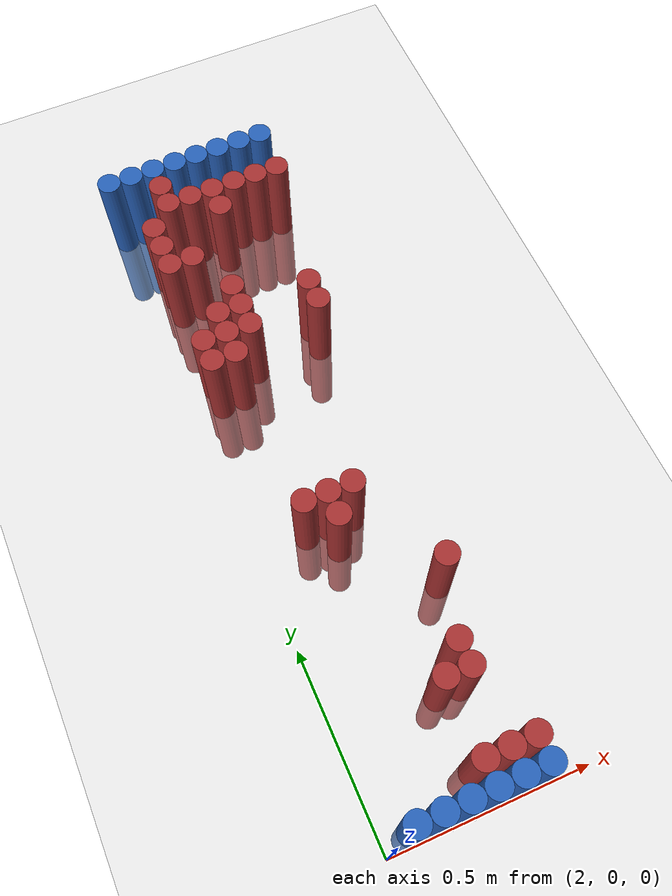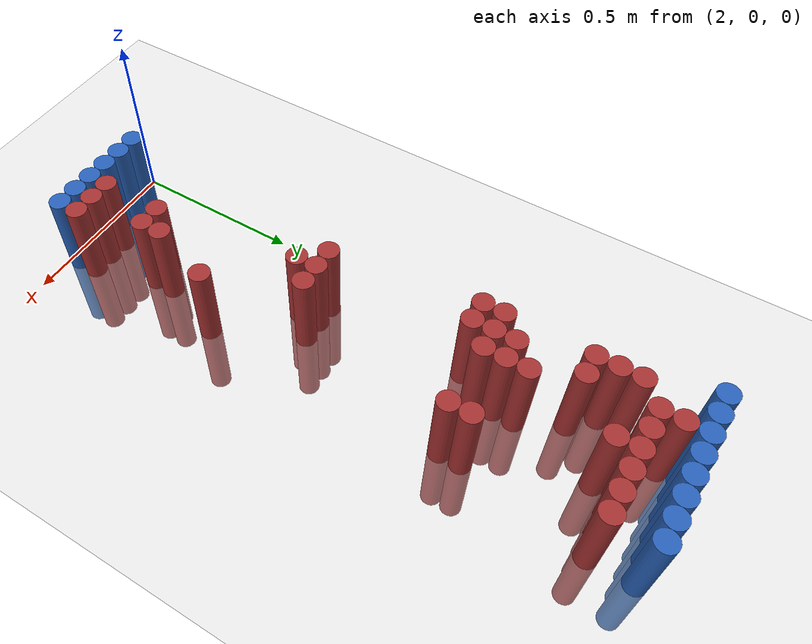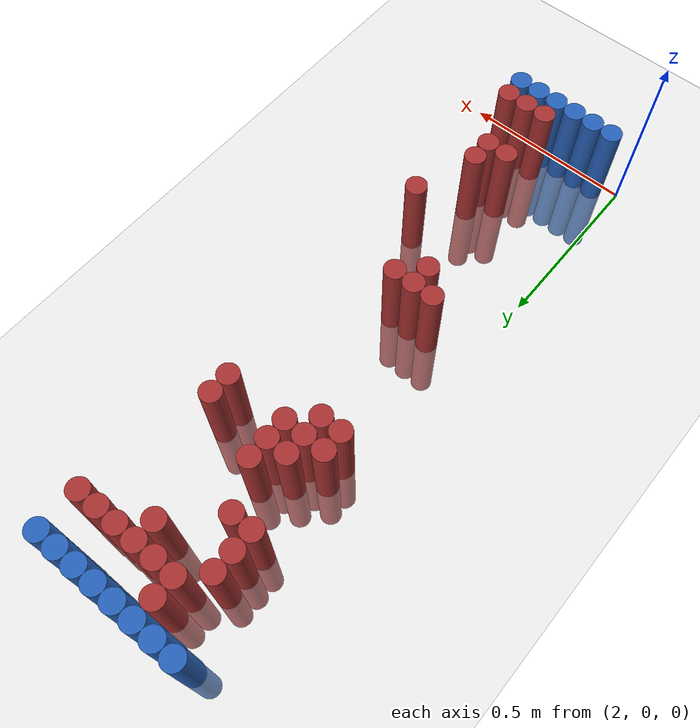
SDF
<sdf version="1.6">
 <world name="default">
  <model name="ground_plane">
   <static>1</static>
   <link name="link">
    <collision name="collision">
     <geometry><plane><normal>0 0 1</normal><size>100 100</size></plane></geometry>
     <surface><friction><ode><mu>100</mu><mu2>50</mu2></ode></friction></surface>
    </collision>
    <visual name="visual">
     <cast_shadows>0</cast_shadows>
     <geometry><plane><normal>0 0 1</normal><size>100 100</size></plane></geometry>
     <material>
      <script><uri>file://media/materials/scripts/gazebo.material</uri><name>Gazebo/Grey</name></script>
     </material>
    </visual>
   </link>
  </model>
  <model name="unit_cylinder_94">
   <static>1</static>
   <pose>2.010000 1.770000 0.000000 0.000000 0.000000 0.000000</pose>
   <link name="link">
    <inertial>
     <mass>1</mass>
     <inertia><ixx>0.145833</ixx><ixy>0</ixy><ixz>0</ixz><iyy>0.145833</iyy><iyz>0</iyz><izz>0.125</izz></inertia>
    </inertial>
    <collision name="collision">
     <geometry><cylinder><radius>0.030000</radius><length>0.5</length></cylinder></geometry>
    </collision>
    <visual name="visual">
     <geometry><cylinder><radius>0.030000</radius><length>0.5</length></cylinder></geometry>
     <material>
      <ambient>0.152000 0.379000 0.720000 1</ambient>
      <diffuse>0.152000 0.379000 0.720000 1</diffuse>
     </material>
     <material>
      <script><name>Gazebo/Grey</name><uri>file://media/materials/scripts/gazebo.material</uri></script>
     </material>
    </visual>
   </link>
  </model>
  <model name="unit_cylinder_95">
   <static>1</static>
   <pose>2.070000 1.770000 0.000000 0.000000 0.000000 0.000000</pose>
   <link name="link">
    <inertial>
     <mass>1</mass>
     <inertia><ixx>0.145833</ixx><ixy>0</ixy><ixz>0</ixz><iyy>0.145833</iyy><iyz>0</iyz><izz>0.125</izz></inertia>
    </inertial>
    <collision name="collision">
     <geometry><cylinder><radius>0.030000</radius><length>0.5</length></cylinder></geometry>
    </collision>
    <visual name="visual">
     <geometry><cylinder><radius>0.030000</radius><length>0.5</length></cylinder></geometry>
     <material>
      <ambient>0.152000 0.379000 0.720000 1</ambient>
      <diffuse>0.152000 0.379000 0.720000 1</diffuse>
     </material>
     <material>
      <script><name>Gazebo/Grey</name><uri>file://media/materials/scripts/gazebo.material</uri></script>
     </material>
    </visual>
   </link>
  </model>
  <model name="unit_cylinder_96">
   <static>1</static>
   <pose>2.130000 1.770000 0.000000 0.000000 0.000000 0.000000</pose>
   <link name="link">
    <inertial>
     <mass>1</mass>
     <inertia><ixx>0.145833</ixx><ixy>0</ixy><ixz>0</ixz><iyy>0.145833</iyy><iyz>0</iyz><izz>0.125</izz></inertia>
    </inertial>
    <collision name="collision">
     <geometry><cylinder><radius>0.030000</radius><length>0.5</length></cylinder></geometry>
    </collision>
    <visual name="visual">
     <geometry><cylinder><radius>0.030000</radius><length>0.5</length></cylinder></geometry>
     <material>
      <ambient>0.152000 0.379000 0.720000 1</ambient>
      <diffuse>0.152000 0.379000 0.720000 1</diffuse>
     </material>
     <material>
      <script><name>Gazebo/Grey</name><uri>file://media/materials/scripts/gazebo.material</uri></script>
     </material>
    </visual>
   </link>
  </model>
  <model name="unit_cylinder_97">
   <static>1</static>
   <pose>2.190000 1.770000 0.000000 0.000000 0.000000 0.000000</pose>
   <link name="link">
    <inertial>
     <mass>1</mass>
     <inertia><ixx>0.145833</ixx><ixy>0</ixy><ixz>0</ixz><iyy>0.145833</iyy><iyz>0</iyz><izz>0.125</izz></inertia>
    </inertial>
    <collision name="collision">
     <geometry><cylinder><radius>0.030000</radius><length>0.5</length></cylinder></geometry>
    </collision>
    <visual name="visual">
     <geometry><cylinder><radius>0.030000</radius><length>0.5</length></cylinder></geometry>
     <material>
      <ambient>0.152000 0.379000 0.720000 1</ambient>
      <diffuse>0.152000 0.379000 0.720000 1</diffuse>
     </material>
     <material>
      <script><name>Gazebo/Grey</name><uri>file://media/materials/scripts/gazebo.material</uri></script>
     </material>
    </visual>
   </link>
  </model>
  <model name="unit_cylinder_98">
   <static>1</static>
   <pose>2.250000 1.770000 0.000000 0.000000 0.000000 0.000000</pose>
   <link name="link">
    <inertial>
     <mass>1</mass>
     <inertia><ixx>0.145833</ixx><ixy>0</ixy><ixz>0</ixz><iyy>0.145833</iyy><iyz>0</iyz><izz>0.125</izz></inertia>
    </inertial>
    <collision name="collision">
     <geometry><cylinder><radius>0.030000</radius><length>0.5</length></cylinder></geometry>
    </collision>
    <visual name="visual">
     <geometry><cylinder><radius>0.030000</radius><length>0.5</length></cylinder></geometry>
     <material>
      <ambient>0.152000 0.379000 0.720000 1</ambient>
      <diffuse>0.152000 0.379000 0.720000 1</diffuse>
     </material>
     <material>
      <script><name>Gazebo/Grey</name><uri>file://media/materials/scripts/gazebo.material</uri></script>
     </material>
    </visual>
   </link>
  </model>
  <model name="unit_cylinder_99">
   <static>1</static>
   <pose>2.310000 1.770000 0.000000 0.000000 0.000000 0.000000</pose>
   <link name="link">
    <inertial>
     <mass>1</mass>
     <inertia><ixx>0.145833</ixx><ixy>0</ixy><ixz>0</ixz><iyy>0.145833</iyy><iyz>0</iyz><izz>0.125</izz></inertia>
    </inertial>
    <collision name="collision">
     <geometry><cylinder><radius>0.030000</radius><length>0.5</length></cylinder></geometry>
    </collision>
    <visual name="visual">
     <geometry><cylinder><radius>0.030000</radius><length>0.5</length></cylinder></geometry>
     <material>
      <ambient>0.152000 0.379000 0.720000 1</ambient>
      <diffuse>0.152000 0.379000 0.720000 1</diffuse>
     </material>
     <material>
      <script><name>Gazebo/Grey</name><uri>file://media/materials/scripts/gazebo.material</uri></script>
     </material>
    </visual>
   </link>
  </model>
  <model name="unit_cylinder_100">
   <static>1</static>
   <pose>2.370000 1.770000 0.000000 0.000000 0.000000 0.000000</pose>
   <link name="link">
    <inertial>
     <mass>1</mass>
     <inertia><ixx>0.145833</ixx><ixy>0</ixy><ixz>0</ixz><iyy>0.145833</iyy><iyz>0</iyz><izz>0.125</izz></inertia>
    </inertial>
    <collision name="collision">
     <geometry><cylinder><radius>0.030000</radius><length>0.5</length></cylinder></geometry>
    </collision>
    <visual name="visual">
     <geometry><cylinder><radius>0.030000</radius><length>0.5</length></cylinder></geometry>
     <material>
      <ambient>0.152000 0.379000 0.720000 1</ambient>
      <diffuse>0.152000 0.379000 0.720000 1</diffuse>
     </material>
     <material>
      <script><name>Gazebo/Grey</name><uri>file://media/materials/scripts/gazebo.material</uri></script>
     </material>
    </visual>
   </link>
  </model>
  <model name="unit_cylinder_101">
   <static>1</static>
   <pose>2.430000 1.770000 0.000000 0.000000 0.000000 0.000000</pose>
   <link name="link">
    <inertial>
     <mass>1</mass>
     <inertia><ixx>0.145833</ixx><ixy>0</ixy><ixz>0</ixz><iyy>0.145833</iyy><iyz>0</iyz><izz>0.125</izz></inertia>
    </inertial>
    <collision name="collision">
     <geometry><cylinder><radius>0.030000</radius><length>0.5</length></cylinder></geometry>
    </collision>
    <visual name="visual">
     <geometry><cylinder><radius>0.030000</radius><length>0.5</length></cylinder></geometry>
     <material>
      <ambient>0.152000 0.379000 0.720000 1</ambient>
      <diffuse>0.152000 0.379000 0.720000 1</diffuse>
     </material>
     <material>
      <script><name>Gazebo/Grey</name><uri>file://media/materials/scripts/gazebo.material</uri></script>
     </material>
    </visual>
   </link>
  </model>
  <model name="unit_cylinder_125">
   <static>1</static>
   <pose>2.130000 1.710000 0.000000 0.000000 0.000000 0.000000</pose>
   <link name="link">
    <inertial>
     <mass>1</mass>
     <inertia><ixx>0.145833</ixx><ixy>0</ixy><ixz>0</ixz><iyy>0.145833</iyy><iyz>0</iyz><izz>0.125</izz></inertia>
    </inertial>
    <collision name="collision">
     <geometry><cylinder><radius>0.030000</radius><length>0.5</length></cylinder></geometry>
    </collision>
    <visual name="visual">
     <geometry><cylinder><radius>0.030000</radius><length>0.5</length></cylinder></geometry>
     <material>
      <ambient>0.648000 0.192000 0.192000 1</ambient>
      <diffuse>0.648000 0.192000 0.192000 1</diffuse>
     </material>
     <material>
      <script><name>Gazebo/Grey</name><uri>file://media/materials/scripts/gazebo.material</uri></script>
     </material>
    </visual>
   </link>
  </model>
  <model name="unit_cylinder_142">
   <static>1</static>
   <pose>2.130000 1.650000 0.000000 0.000000 0.000000 0.000000</pose>
   <link name="link">
    <inertial>
     <mass>1</mass>
     <inertia><ixx>0.145833</ixx><ixy>0</ixy><ixz>0</ixz><iyy>0.145833</iyy><iyz>0</iyz><izz>0.125</izz></inertia>
    </inertial>
    <collision name="collision">
     <geometry><cylinder><radius>0.030000</radius><length>0.5</length></cylinder></geometry>
    </collision>
    <visual name="visual">
     <geometry><cylinder><radius>0.030000</radius><length>0.5</length></cylinder></geometry>
     <material>
      <ambient>0.648000 0.192000 0.192000 1</ambient>
      <diffuse>0.648000 0.192000 0.192000 1</diffuse>
     </material>
     <material>
      <script><name>Gazebo/Grey</name><uri>file://media/materials/scripts/gazebo.material</uri></script>
     </material>
    </visual>
   </link>
  </model>
  <model name="unit_cylinder_143">
   <static>1</static>
   <pose>2.190000 1.650000 0.000000 0.000000 0.000000 0.000000</pose>
   <link name="link">
    <inertial>
     <mass>1</mass>
     <inertia><ixx>0.145833</ixx><ixy>0</ixy><ixz>0</ixz><iyy>0.145833</iyy><iyz>0</iyz><izz>0.125</izz></inertia>
    </inertial>
    <collision name="collision">
     <geometry><cylinder><radius>0.030000</radius><length>0.5</length></cylinder></geometry>
    </collision>
    <visual name="visual">
     <geometry><cylinder><radius>0.030000</radius><length>0.5</length></cylinder></geometry>
     <material>
      <ambient>0.648000 0.192000 0.192000 1</ambient>
      <diffuse>0.648000 0.192000 0.192000 1</diffuse>
     </material>
     <material>
      <script><name>Gazebo/Grey</name><uri>file://media/materials/scripts/gazebo.material</uri></script>
     </material>
    </visual>
   </link>
  </model>
  <model name="unit_cylinder_144">
   <static>1</static>
   <pose>2.250000 1.650000 0.000000 0.000000 0.000000 0.000000</pose>
   <link name="link">
    <inertial>
     <mass>1</mass>
     <inertia><ixx>0.145833</ixx><ixy>0</ixy><ixz>0</ixz><iyy>0.145833</iyy><iyz>0</iyz><izz>0.125</izz></inertia>
    </inertial>
    <collision name="collision">
     <geometry><cylinder><radius>0.030000</radius><length>0.5</length></cylinder></geometry>
    </collision>
    <visual name="visual">
     <geometry><cylinder><radius>0.030000</radius><length>0.5</length></cylinder></geometry>
     <material>
      <ambient>0.648000 0.192000 0.192000 1</ambient>
      <diffuse>0.648000 0.192000 0.192000 1</diffuse>
     </material>
     <material>
      <script><name>Gazebo/Grey</name><uri>file://media/materials/scripts/gazebo.material</uri></script>
     </material>
    </visual>
   </link>
  </model>
  <model name="unit_cylinder_145">
   <static>1</static>
   <pose>2.310000 1.650000 0.000000 0.000000 0.000000 0.000000</pose>
   <link name="link">
    <inertial>
     <mass>1</mass>
     <inertia><ixx>0.145833</ixx><ixy>0</ixy><ixz>0</ixz><iyy>0.145833</iyy><iyz>0</iyz><izz>0.125</izz></inertia>
    </inertial>
    <collision name="collision">
     <geometry><cylinder><radius>0.030000</radius><length>0.5</length></cylinder></geometry>
    </collision>
    <visual name="visual">
     <geometry><cylinder><radius>0.030000</radius><length>0.5</length></cylinder></geometry>
     <material>
      <ambient>0.648000 0.192000 0.192000 1</ambient>
      <diffuse>0.648000 0.192000 0.192000 1</diffuse>
     </material>
     <material>
      <script><name>Gazebo/Grey</name><uri>file://media/materials/scripts/gazebo.material</uri></script>
     </material>
    </visual>
   </link>
  </model>
  <model name="unit_cylinder_146">
   <static>1</static>
   <pose>2.370000 1.650000 0.000000 0.000000 0.000000 0.000000</pose>
   <link name="link">
    <inertial>
     <mass>1</mass>
     <inertia><ixx>0.145833</ixx><ixy>0</ixy><ixz>0</ixz><iyy>0.145833</iyy><iyz>0</iyz><izz>0.125</izz></inertia>
    </inertial>
    <collision name="collision">
     <geometry><cylinder><radius>0.030000</radius><length>0.5</length></cylinder></geometry>
    </collision>
    <visual name="visual">
     <geometry><cylinder><radius>0.030000</radius><length>0.5</length></cylinder></geometry>
     <material>
      <ambient>0.648000 0.192000 0.192000 1</ambient>
      <diffuse>0.648000 0.192000 0.192000 1</diffuse>
     </material>
     <material>
      <script><name>Gazebo/Grey</name><uri>file://media/materials/scripts/gazebo.material</uri></script>
     </material>
    </visual>
   </link>
  </model>
  <model name="unit_cylinder_147">
   <static>1</static>
   <pose>2.430000 1.650000 0.000000 0.000000 0.000000 0.000000</pose>
   <link name="link">
    <inertial>
     <mass>1</mass>
     <inertia><ixx>0.145833</ixx><ixy>0</ixy><ixz>0</ixz><iyy>0.145833</iyy><iyz>0</iyz><izz>0.125</izz></inertia>
    </inertial>
    <collision name="collision">
     <geometry><cylinder><radius>0.030000</radius><length>0.5</length></cylinder></geometry>
    </collision>
    <visual name="visual">
     <geometry><cylinder><radius>0.030000</radius><length>0.5</length></cylinder></geometry>
     <material>
      <ambient>0.648000 0.192000 0.192000 1</ambient>
      <diffuse>0.648000 0.192000 0.192000 1</diffuse>
     </material>
     <material>
      <script><name>Gazebo/Grey</name><uri>file://media/materials/scripts/gazebo.material</uri></script>
     </material>
    </visual>
   </link>
  </model>
  <model name="unit_cylinder_157">
   <static>1</static>
   <pose>2.070000 1.590000 0.000000 0.000000 0.000000 0.000000</pose>
   <link name="link">
    <inertial>
     <mass>1</mass>
     <inertia><ixx>0.145833</ixx><ixy>0</ixy><ixz>0</ixz><iyy>0.145833</iyy><iyz>0</iyz><izz>0.125</izz></inertia>
    </inertial>
    <collision name="collision">
     <geometry><cylinder><radius>0.030000</radius><length>0.5</length></cylinder></geometry>
    </collision>
    <visual name="visual">
     <geometry><cylinder><radius>0.030000</radius><length>0.5</length></cylinder></geometry>
     <material>
      <ambient>0.648000 0.192000 0.192000 1</ambient>
      <diffuse>0.648000 0.192000 0.192000 1</diffuse>
     </material>
     <material>
      <script><name>Gazebo/Grey</name><uri>file://media/materials/scripts/gazebo.material</uri></script>
     </material>
    </visual>
   </link>
  </model>
  <model name="unit_cylinder_158">
   <static>1</static>
   <pose>2.250000 1.590000 0.000000 0.000000 0.000000 0.000000</pose>
   <link name="link">
    <inertial>
     <mass>1</mass>
     <inertia><ixx>0.145833</ixx><ixy>0</ixy><ixz>0</ixz><iyy>0.145833</iyy><iyz>0</iyz><izz>0.125</izz></inertia>
    </inertial>
    <collision name="collision">
     <geometry><cylinder><radius>0.030000</radius><length>0.5</length></cylinder></geometry>
    </collision>
    <visual name="visual">
     <geometry><cylinder><radius>0.030000</radius><length>0.5</length></cylinder></geometry>
     <material>
      <ambient>0.648000 0.192000 0.192000 1</ambient>
      <diffuse>0.648000 0.192000 0.192000 1</diffuse>
     </material>
     <material>
      <script><name>Gazebo/Grey</name><uri>file://media/materials/scripts/gazebo.material</uri></script>
     </material>
    </visual>
   </link>
  </model>
  <model name="unit_cylinder_166">
   <static>1</static>
   <pose>2.070000 1.530000 0.000000 0.000000 0.000000 0.000000</pose>
   <link name="link">
    <inertial>
     <mass>1</mass>
     <inertia><ixx>0.145833</ixx><ixy>0</ixy><ixz>0</ixz><iyy>0.145833</iyy><iyz>0</iyz><izz>0.125</izz></inertia>
    </inertial>
    <collision name="collision">
     <geometry><cylinder><radius>0.030000</radius><length>0.5</length></cylinder></geometry>
    </collision>
    <visual name="visual">
     <geometry><cylinder><radius>0.030000</radius><length>0.5</length></cylinder></geometry>
     <material>
      <ambient>0.648000 0.192000 0.192000 1</ambient>
      <diffuse>0.648000 0.192000 0.192000 1</diffuse>
     </material>
     <material>
      <script><name>Gazebo/Grey</name><uri>file://media/materials/scripts/gazebo.material</uri></script>
     </material>
    </visual>
   </link>
  </model>
  <model name="unit_cylinder_174">
   <static>1</static>
   <pose>2.070000 1.470000 0.000000 0.000000 0.000000 0.000000</pose>
   <link name="link">
    <inertial>
     <mass>1</mass>
     <inertia><ixx>0.145833</ixx><ixy>0</ixy><ixz>0</ixz><iyy>0.145833</iyy><iyz>0</iyz><izz>0.125</izz></inertia>
    </inertial>
    <collision name="collision">
     <geometry><cylinder><radius>0.030000</radius><length>0.5</length></cylinder></geometry>
    </collision>
    <visual name="visual">
     <geometry><cylinder><radius>0.030000</radius><length>0.5</length></cylinder></geometry>
     <material>
      <ambient>0.648000 0.192000 0.192000 1</ambient>
      <diffuse>0.648000 0.192000 0.192000 1</diffuse>
     </material>
     <material>
      <script><name>Gazebo/Grey</name><uri>file://media/materials/scripts/gazebo.material</uri></script>
     </material>
    </visual>
   </link>
  </model>
  <model name="unit_cylinder_175">
   <static>1</static>
   <pose>2.130000 1.470000 0.000000 0.000000 0.000000 0.000000</pose>
   <link name="link">
    <inertial>
     <mass>1</mass>
     <inertia><ixx>0.145833</ixx><ixy>0</ixy><ixz>0</ixz><iyy>0.145833</iyy><iyz>0</iyz><izz>0.125</izz></inertia>
    </inertial>
    <collision name="collision">
     <geometry><cylinder><radius>0.030000</radius><length>0.5</length></cylinder></geometry>
    </collision>
    <visual name="visual">
     <geometry><cylinder><radius>0.030000</radius><length>0.5</length></cylinder></geometry>
     <material>
      <ambient>0.648000 0.192000 0.192000 1</ambient>
      <diffuse>0.648000 0.192000 0.192000 1</diffuse>
     </material>
     <material>
      <script><name>Gazebo/Grey</name><uri>file://media/materials/scripts/gazebo.material</uri></script>
     </material>
    </visual>
   </link>
  </model>
  <model name="unit_cylinder_182">
   <static>1</static>
   <pose>2.190000 1.350000 0.000000 0.000000 0.000000 0.000000</pose>
   <link name="link">
    <inertial>
     <mass>1</mass>
     <inertia><ixx>0.145833</ixx><ixy>0</ixy><ixz>0</ixz><iyy>0.145833</iyy><iyz>0</iyz><izz>0.125</izz></inertia>
    </inertial>
    <collision name="collision">
     <geometry><cylinder><radius>0.030000</radius><length>0.5</length></cylinder></geometry>
    </collision>
    <visual name="visual">
     <geometry><cylinder><radius>0.030000</radius><length>0.5</length></cylinder></geometry>
     <material>
      <ambient>0.648000 0.192000 0.192000 1</ambient>
      <diffuse>0.648000 0.192000 0.192000 1</diffuse>
     </material>
     <material>
      <script><name>Gazebo/Grey</name><uri>file://media/materials/scripts/gazebo.material</uri></script>
     </material>
    </visual>
   </link>
  </model>
  <model name="unit_cylinder_185">
   <static>1</static>
   <pose>2.130000 1.290000 0.000000 0.000000 0.000000 0.000000</pose>
   <link name="link">
    <inertial>
     <mass>1</mass>
     <inertia><ixx>0.145833</ixx><ixy>0</ixy><ixz>0</ixz><iyy>0.145833</iyy><iyz>0</iyz><izz>0.125</izz></inertia>
    </inertial>
    <collision name="collision">
     <geometry><cylinder><radius>0.030000</radius><length>0.5</length></cylinder></geometry>
    </collision>
    <visual name="visual">
     <geometry><cylinder><radius>0.030000</radius><length>0.5</length></cylinder></geometry>
     <material>
      <ambient>0.648000 0.192000 0.192000 1</ambient>
      <diffuse>0.648000 0.192000 0.192000 1</diffuse>
     </material>
     <material>
      <script><name>Gazebo/Grey</name><uri>file://media/materials/scripts/gazebo.material</uri></script>
     </material>
    </visual>
   </link>
  </model>
  <model name="unit_cylinder_186">
   <static>1</static>
   <pose>2.190000 1.290000 0.000000 0.000000 0.000000 0.000000</pose>
   <link name="link">
    <inertial>
     <mass>1</mass>
     <inertia><ixx>0.145833</ixx><ixy>0</ixy><ixz>0</ixz><iyy>0.145833</iyy><iyz>0</iyz><izz>0.125</izz></inertia>
    </inertial>
    <collision name="collision">
     <geometry><cylinder><radius>0.030000</radius><length>0.5</length></cylinder></geometry>
    </collision>
    <visual name="visual">
     <geometry><cylinder><radius>0.030000</radius><length>0.5</length></cylinder></geometry>
     <material>
      <ambient>0.648000 0.192000 0.192000 1</ambient>
      <diffuse>0.648000 0.192000 0.192000 1</diffuse>
     </material>
     <material>
      <script><name>Gazebo/Grey</name><uri>file://media/materials/scripts/gazebo.material</uri></script>
     </material>
    </visual>
   </link>
  </model>
  <model name="unit_cylinder_187">
   <static>1</static>
   <pose>2.370000 1.290000 0.000000 0.000000 0.000000 0.000000</pose>
   <link name="link">
    <inertial>
     <mass>1</mass>
     <inertia><ixx>0.145833</ixx><ixy>0</ixy><ixz>0</ixz><iyy>0.145833</iyy><iyz>0</iyz><izz>0.125</izz></inertia>
    </inertial>
    <collision name="collision">
     <geometry><cylinder><radius>0.030000</radius><length>0.5</length></cylinder></geometry>
    </collision>
    <visual name="visual">
     <geometry><cylinder><radius>0.030000</radius><length>0.5</length></cylinder></geometry>
     <material>
      <ambient>0.648000 0.192000 0.192000 1</ambient>
      <diffuse>0.648000 0.192000 0.192000 1</diffuse>
     </material>
     <material>
      <script><name>Gazebo/Grey</name><uri>file://media/materials/scripts/gazebo.material</uri></script>
     </material>
    </visual>
   </link>
  </model>
  <model name="unit_cylinder_190">
   <static>1</static>
   <pose>2.070000 1.230000 0.000000 0.000000 0.000000 0.000000</pose>
   <link name="link">
    <inertial>
     <mass>1</mass>
     <inertia><ixx>0.145833</ixx><ixy>0</ixy><ixz>0</ixz><iyy>0.145833</iyy><iyz>0</iyz><izz>0.125</izz></inertia>
    </inertial>
    <collision name="collision">
     <geometry><cylinder><radius>0.030000</radius><length>0.5</length></cylinder></geometry>
    </collision>
    <visual name="visual">
     <geometry><cylinder><radius>0.030000</radius><length>0.5</length></cylinder></geometry>
     <material>
      <ambient>0.648000 0.192000 0.192000 1</ambient>
      <diffuse>0.648000 0.192000 0.192000 1</diffuse>
     </material>
     <material>
      <script><name>Gazebo/Grey</name><uri>file://media/materials/scripts/gazebo.material</uri></script>
     </material>
    </visual>
   </link>
  </model>
  <model name="unit_cylinder_191">
   <static>1</static>
   <pose>2.130000 1.230000 0.000000 0.000000 0.000000 0.000000</pose>
   <link name="link">
    <inertial>
     <mass>1</mass>
     <inertia><ixx>0.145833</ixx><ixy>0</ixy><ixz>0</ixz><iyy>0.145833</iyy><iyz>0</iyz><izz>0.125</izz></inertia>
    </inertial>
    <collision name="collision">
     <geometry><cylinder><radius>0.030000</radius><length>0.5</length></cylinder></geometry>
    </collision>
    <visual name="visual">
     <geometry><cylinder><radius>0.030000</radius><length>0.5</length></cylinder></geometry>
     <material>
      <ambient>0.648000 0.192000 0.192000 1</ambient>
      <diffuse>0.648000 0.192000 0.192000 1</diffuse>
     </material>
     <material>
      <script><name>Gazebo/Grey</name><uri>file://media/materials/scripts/gazebo.material</uri></script>
     </material>
    </visual>
   </link>
  </model>
  <model name="unit_cylinder_192">
   <static>1</static>
   <pose>2.190000 1.230000 0.000000 0.000000 0.000000 0.000000</pose>
   <link name="link">
    <inertial>
     <mass>1</mass>
     <inertia><ixx>0.145833</ixx><ixy>0</ixy><ixz>0</ixz><iyy>0.145833</iyy><iyz>0</iyz><izz>0.125</izz></inertia>
    </inertial>
    <collision name="collision">
     <geometry><cylinder><radius>0.030000</radius><length>0.5</length></cylinder></geometry>
    </collision>
    <visual name="visual">
     <geometry><cylinder><radius>0.030000</radius><length>0.5</length></cylinder></geometry>
     <material>
      <ambient>0.648000 0.192000 0.192000 1</ambient>
      <diffuse>0.648000 0.192000 0.192000 1</diffuse>
     </material>
     <material>
      <script><name>Gazebo/Grey</name><uri>file://media/materials/scripts/gazebo.material</uri></script>
     </material>
    </visual>
   </link>
  </model>
  <model name="unit_cylinder_193">
   <static>1</static>
   <pose>2.370000 1.230000 0.000000 0.000000 0.000000 0.000000</pose>
   <link name="link">
    <inertial>
     <mass>1</mass>
     <inertia><ixx>0.145833</ixx><ixy>0</ixy><ixz>0</ixz><iyy>0.145833</iyy><iyz>0</iyz><izz>0.125</izz></inertia>
    </inertial>
    <collision name="collision">
     <geometry><cylinder><radius>0.030000</radius><length>0.5</length></cylinder></geometry>
    </collision>
    <visual name="visual">
     <geometry><cylinder><radius>0.030000</radius><length>0.5</length></cylinder></geometry>
     <material>
      <ambient>0.648000 0.192000 0.192000 1</ambient>
      <diffuse>0.648000 0.192000 0.192000 1</diffuse>
     </material>
     <material>
      <script><name>Gazebo/Grey</name><uri>file://media/materials/scripts/gazebo.material</uri></script>
     </material>
    </visual>
   </link>
  </model>
  <model name="unit_cylinder_199">
   <static>1</static>
   <pose>2.070000 1.170000 0.000000 0.000000 0.000000 0.000000</pose>
   <link name="link">
    <inertial>
     <mass>1</mass>
     <inertia><ixx>0.145833</ixx><ixy>0</ixy><ixz>0</ixz><iyy>0.145833</iyy><iyz>0</iyz><izz>0.125</izz></inertia>
    </inertial>
    <collision name="collision">
     <geometry><cylinder><radius>0.030000</radius><length>0.5</length></cylinder></geometry>
    </collision>
    <visual name="visual">
     <geometry><cylinder><radius>0.030000</radius><length>0.5</length></cylinder></geometry>
     <material>
      <ambient>0.648000 0.192000 0.192000 1</ambient>
      <diffuse>0.648000 0.192000 0.192000 1</diffuse>
     </material>
     <material>
      <script><name>Gazebo/Grey</name><uri>file://media/materials/scripts/gazebo.material</uri></script>
     </material>
    </visual>
   </link>
  </model>
  <model name="unit_cylinder_200">
   <static>1</static>
   <pose>2.130000 1.170000 0.000000 0.000000 0.000000 0.000000</pose>
   <link name="link">
    <inertial>
     <mass>1</mass>
     <inertia><ixx>0.145833</ixx><ixy>0</ixy><ixz>0</ixz><iyy>0.145833</iyy><iyz>0</iyz><izz>0.125</izz></inertia>
    </inertial>
    <collision name="collision">
     <geometry><cylinder><radius>0.030000</radius><length>0.5</length></cylinder></geometry>
    </collision>
    <visual name="visual">
     <geometry><cylinder><radius>0.030000</radius><length>0.5</length></cylinder></geometry>
     <material>
      <ambient>0.648000 0.192000 0.192000 1</ambient>
      <diffuse>0.648000 0.192000 0.192000 1</diffuse>
     </material>
     <material>
      <script><name>Gazebo/Grey</name><uri>file://media/materials/scripts/gazebo.material</uri></script>
     </material>
    </visual>
   </link>
  </model>
  <model name="unit_cylinder_237">
   <static>1</static>
   <pose>2.130000 0.750000 0.000000 0.000000 0.000000 0.000000</pose>
   <link name="link">
    <inertial>
     <mass>1</mass>
     <inertia><ixx>0.145833</ixx><ixy>0</ixy><ixz>0</ixz><iyy>0.145833</iyy><iyz>0</iyz><izz>0.125</izz></inertia>
    </inertial>
    <collision name="collision">
     <geometry><cylinder><radius>0.030000</radius><length>0.5</length></cylinder></geometry>
    </collision>
    <visual name="visual">
     <geometry><cylinder><radius>0.030000</radius><length>0.5</length></cylinder></geometry>
     <material>
      <ambient>0.648000 0.192000 0.192000 1</ambient>
      <diffuse>0.648000 0.192000 0.192000 1</diffuse>
     </material>
     <material>
      <script><name>Gazebo/Grey</name><uri>file://media/materials/scripts/gazebo.material</uri></script>
     </material>
    </visual>
   </link>
  </model>
  <model name="unit_cylinder_238">
   <static>1</static>
   <pose>2.190000 0.750000 0.000000 0.000000 0.000000 0.000000</pose>
   <link name="link">
    <inertial>
     <mass>1</mass>
     <inertia><ixx>0.145833</ixx><ixy>0</ixy><ixz>0</ixz><iyy>0.145833</iyy><iyz>0</iyz><izz>0.125</izz></inertia>
    </inertial>
    <collision name="collision">
     <geometry><cylinder><radius>0.030000</radius><length>0.5</length></cylinder></geometry>
    </collision>
    <visual name="visual">
     <geometry><cylinder><radius>0.030000</radius><length>0.5</length></cylinder></geometry>
     <material>
      <ambient>0.648000 0.192000 0.192000 1</ambient>
      <diffuse>0.648000 0.192000 0.192000 1</diffuse>
     </material>
     <material>
      <script><name>Gazebo/Grey</name><uri>file://media/materials/scripts/gazebo.material</uri></script>
     </material>
    </visual>
   </link>
  </model>
  <model name="unit_cylinder_239">
   <static>1</static>
   <pose>2.250000 0.750000 0.000000 0.000000 0.000000 0.000000</pose>
   <link name="link">
    <inertial>
     <mass>1</mass>
     <inertia><ixx>0.145833</ixx><ixy>0</ixy><ixz>0</ixz><iyy>0.145833</iyy><iyz>0</iyz><izz>0.125</izz></inertia>
    </inertial>
    <collision name="collision">
     <geometry><cylinder><radius>0.030000</radius><length>0.5</length></cylinder></geometry>
    </collision>
    <visual name="visual">
     <geometry><cylinder><radius>0.030000</radius><length>0.5</length></cylinder></geometry>
     <material>
      <ambient>0.648000 0.192000 0.192000 1</ambient>
      <diffuse>0.648000 0.192000 0.192000 1</diffuse>
     </material>
     <material>
      <script><name>Gazebo/Grey</name><uri>file://media/materials/scripts/gazebo.material</uri></script>
     </material>
    </visual>
   </link>
  </model>
  <model name="unit_cylinder_246">
   <static>1</static>
   <pose>2.190000 0.690000 0.000000 0.000000 0.000000 0.000000</pose>
   <link name="link">
    <inertial>
     <mass>1</mass>
     <inertia><ixx>0.145833</ixx><ixy>0</ixy><ixz>0</ixz><iyy>0.145833</iyy><iyz>0</iyz><izz>0.125</izz></inertia>
    </inertial>
    <collision name="collision">
     <geometry><cylinder><radius>0.030000</radius><length>0.5</length></cylinder></geometry>
    </collision>
    <visual name="visual">
     <geometry><cylinder><radius>0.030000</radius><length>0.5</length></cylinder></geometry>
     <material>
      <ambient>0.648000 0.192000 0.192000 1</ambient>
      <diffuse>0.648000 0.192000 0.192000 1</diffuse>
     </material>
     <material>
      <script><name>Gazebo/Grey</name><uri>file://media/materials/scripts/gazebo.material</uri></script>
     </material>
    </visual>
   </link>
  </model>
  <model name="unit_cylinder_255">
   <static>1</static>
   <pose>2.370000 0.510000 0.000000 0.000000 0.000000 0.000000</pose>
   <link name="link">
    <inertial>
     <mass>1</mass>
     <inertia><ixx>0.145833</ixx><ixy>0</ixy><ixz>0</ixz><iyy>0.145833</iyy><iyz>0</iyz><izz>0.125</izz></inertia>
    </inertial>
    <collision name="collision">
     <geometry><cylinder><radius>0.030000</radius><length>0.5</length></cylinder></geometry>
    </collision>
    <visual name="visual">
     <geometry><cylinder><radius>0.030000</radius><length>0.5</length></cylinder></geometry>
     <material>
      <ambient>0.648000 0.192000 0.192000 1</ambient>
      <diffuse>0.648000 0.192000 0.192000 1</diffuse>
     </material>
     <material>
      <script><name>Gazebo/Grey</name><uri>file://media/materials/scripts/gazebo.material</uri></script>
     </material>
    </visual>
   </link>
  </model>
  <model name="unit_cylinder_262">
   <static>1</static>
   <pose>2.310000 0.330000 0.000000 0.000000 0.000000 0.000000</pose>
   <link name="link">
    <inertial>
     <mass>1</mass>
     <inertia><ixx>0.145833</ixx><ixy>0</ixy><ixz>0</ixz><iyy>0.145833</iyy><iyz>0</iyz><izz>0.125</izz></inertia>
    </inertial>
    <collision name="collision">
     <geometry><cylinder><radius>0.030000</radius><length>0.5</length></cylinder></geometry>
    </collision>
    <visual name="visual">
     <geometry><cylinder><radius>0.030000</radius><length>0.5</length></cylinder></geometry>
     <material>
      <ambient>0.648000 0.192000 0.192000 1</ambient>
      <diffuse>0.648000 0.192000 0.192000 1</diffuse>
     </material>
     <material>
      <script><name>Gazebo/Grey</name><uri>file://media/materials/scripts/gazebo.material</uri></script>
     </material>
    </visual>
   </link>
  </model>
  <model name="unit_cylinder_263">
   <static>1</static>
   <pose>2.250000 0.270000 0.000000 0.000000 0.000000 0.000000</pose>
   <link name="link">
    <inertial>
     <mass>1</mass>
     <inertia><ixx>0.145833</ixx><ixy>0</ixy><ixz>0</ixz><iyy>0.145833</iyy><iyz>0</iyz><izz>0.125</izz></inertia>
    </inertial>
    <collision name="collision">
     <geometry><cylinder><radius>0.030000</radius><length>0.5</length></cylinder></geometry>
    </collision>
    <visual name="visual">
     <geometry><cylinder><radius>0.030000</radius><length>0.5</length></cylinder></geometry>
     <material>
      <ambient>0.648000 0.192000 0.192000 1</ambient>
      <diffuse>0.648000 0.192000 0.192000 1</diffuse>
     </material>
     <material>
      <script><name>Gazebo/Grey</name><uri>file://media/materials/scripts/gazebo.material</uri></script>
     </material>
    </visual>
   </link>
  </model>
  <model name="unit_cylinder_264">
   <static>1</static>
   <pose>2.310000 0.270000 0.000000 0.000000 0.000000 0.000000</pose>
   <link name="link">
    <inertial>
     <mass>1</mass>
     <inertia><ixx>0.145833</ixx><ixy>0</ixy><ixz>0</ixz><iyy>0.145833</iyy><iyz>0</iyz><izz>0.125</izz></inertia>
    </inertial>
    <collision name="collision">
     <geometry><cylinder><radius>0.030000</radius><length>0.5</length></cylinder></geometry>
    </collision>
    <visual name="visual">
     <geometry><cylinder><radius>0.030000</radius><length>0.5</length></cylinder></geometry>
     <material>
      <ambient>0.648000 0.192000 0.192000 1</ambient>
      <diffuse>0.648000 0.192000 0.192000 1</diffuse>
     </material>
     <material>
      <script><name>Gazebo/Grey</name><uri>file://media/materials/scripts/gazebo.material</uri></script>
     </material>
    </visual>
   </link>
  </model>
  <model name="unit_cylinder_285">
   <static>1</static>
   <pose>2.250000 0.090000 0.000000 0.000000 0.000000 0.000000</pose>
   <link name="link">
    <inertial>
     <mass>1</mass>
     <inertia><ixx>0.145833</ixx><ixy>0</ixy><ixz>0</ixz><iyy>0.145833</iyy><iyz>0</iyz><izz>0.125</izz></inertia>
    </inertial>
    <collision name="collision">
     <geometry><cylinder><radius>0.030000</radius><length>0.5</length></cylinder></geometry>
    </collision>
    <visual name="visual">
     <geometry><cylinder><radius>0.030000</radius><length>0.5</length></cylinder></geometry>
     <material>
      <ambient>0.648000 0.192000 0.192000 1</ambient>
      <diffuse>0.648000 0.192000 0.192000 1</diffuse>
     </material>
     <material>
      <script><name>Gazebo/Grey</name><uri>file://media/materials/scripts/gazebo.material</uri></script>
     </material>
    </visual>
   </link>
  </model>
  <model name="unit_cylinder_286">
   <static>1</static>
   <pose>2.310000 0.090000 0.000000 0.000000 0.000000 0.000000</pose>
   <link name="link">
    <inertial>
     <mass>1</mass>
     <inertia><ixx>0.145833</ixx><ixy>0</ixy><ixz>0</ixz><iyy>0.145833</iyy><iyz>0</iyz><izz>0.125</izz></inertia>
    </inertial>
    <collision name="collision">
     <geometry><cylinder><radius>0.030000</radius><length>0.5</length></cylinder></geometry>
    </collision>
    <visual name="visual">
     <geometry><cylinder><radius>0.030000</radius><length>0.5</length></cylinder></geometry>
     <material>
      <ambient>0.648000 0.192000 0.192000 1</ambient>
      <diffuse>0.648000 0.192000 0.192000 1</diffuse>
     </material>
     <material>
      <script><name>Gazebo/Grey</name><uri>file://media/materials/scripts/gazebo.material</uri></script>
     </material>
    </visual>
   </link>
  </model>
  <model name="unit_cylinder_287">
   <static>1</static>
   <pose>2.370000 0.090000 0.000000 0.000000 0.000000 0.000000</pose>
   <link name="link">
    <inertial>
     <mass>1</mass>
     <inertia><ixx>0.145833</ixx><ixy>0</ixy><ixz>0</ixz><iyy>0.145833</iyy><iyz>0</iyz><izz>0.125</izz></inertia>
    </inertial>
    <collision name="collision">
     <geometry><cylinder><radius>0.030000</radius><length>0.5</length></cylinder></geometry>
    </collision>
    <visual name="visual">
     <geometry><cylinder><radius>0.030000</radius><length>0.5</length></cylinder></geometry>
     <material>
      <ambient>0.648000 0.192000 0.192000 1</ambient>
      <diffuse>0.648000 0.192000 0.192000 1</diffuse>
     </material>
     <material>
      <script><name>Gazebo/Grey</name><uri>file://media/materials/scripts/gazebo.material</uri></script>
     </material>
    </visual>
   </link>
  </model>
  <model name="unit_cylinder_299">
   <static>1</static>
   <pose>2.070000 0.030000 0.000000 0.000000 0.000000 0.000000</pose>
   <link name="link">
    <inertial>
     <mass>1</mass>
     <inertia><ixx>0.145833</ixx><ixy>0</ixy><ixz>0</ixz><iyy>0.145833</iyy><iyz>0</iyz><izz>0.125</izz></inertia>
    </inertial>
    <collision name="collision">
     <geometry><cylinder><radius>0.030000</radius><length>0.5</length></cylinder></geometry>
    </collision>
    <visual name="visual">
     <geometry><cylinder><radius>0.030000</radius><length>0.5</length></cylinder></geometry>
     <material>
      <ambient>0.152000 0.379000 0.720000 1</ambient>
      <diffuse>0.152000 0.379000 0.720000 1</diffuse>
     </material>
     <material>
      <script><name>Gazebo/Grey</name><uri>file://media/materials/scripts/gazebo.material</uri></script>
     </material>
    </visual>
   </link>
  </model>
  <model name="unit_cylinder_300">
   <static>1</static>
   <pose>2.130000 0.030000 0.000000 0.000000 0.000000 0.000000</pose>
   <link name="link">
    <inertial>
     <mass>1</mass>
     <inertia><ixx>0.145833</ixx><ixy>0</ixy><ixz>0</ixz><iyy>0.145833</iyy><iyz>0</iyz><izz>0.125</izz></inertia>
    </inertial>
    <collision name="collision">
     <geometry><cylinder><radius>0.030000</radius><length>0.5</length></cylinder></geometry>
    </collision>
    <visual name="visual">
     <geometry><cylinder><radius>0.030000</radius><length>0.5</length></cylinder></geometry>
     <material>
      <ambient>0.152000 0.379000 0.720000 1</ambient>
      <diffuse>0.152000 0.379000 0.720000 1</diffuse>
     </material>
     <material>
      <script><name>Gazebo/Grey</name><uri>file://media/materials/scripts/gazebo.material</uri></script>
     </material>
    </visual>
   </link>
  </model>
  <model name="unit_cylinder_301">
   <static>1</static>
   <pose>2.190000 0.030000 0.000000 0.000000 0.000000 0.000000</pose>
   <link name="link">
    <inertial>
     <mass>1</mass>
     <inertia><ixx>0.145833</ixx><ixy>0</ixy><ixz>0</ixz><iyy>0.145833</iyy><iyz>0</iyz><izz>0.125</izz></inertia>
    </inertial>
    <collision name="collision">
     <geometry><cylinder><radius>0.030000</radius><length>0.5</length></cylinder></geometry>
    </collision>
    <visual name="visual">
     <geometry><cylinder><radius>0.030000</radius><length>0.5</length></cylinder></geometry>
     <material>
      <ambient>0.152000 0.379000 0.720000 1</ambient>
      <diffuse>0.152000 0.379000 0.720000 1</diffuse>
     </material>
     <material>
      <script><name>Gazebo/Grey</name><uri>file://media/materials/scripts/gazebo.material</uri></script>
     </material>
    </visual>
   </link>
  </model>
  <model name="unit_cylinder_302">
   <static>1</static>
   <pose>2.250000 0.030000 0.000000 0.000000 0.000000 0.000000</pose>
   <link name="link">
    <inertial>
     <mass>1</mass>
     <inertia><ixx>0.145833</ixx><ixy>0</ixy><ixz>0</ixz><iyy>0.145833</iyy><iyz>0</iyz><izz>0.125</izz></inertia>
    </inertial>
    <collision name="collision">
     <geometry><cylinder><radius>0.030000</radius><length>0.5</length></cylinder></geometry>
    </collision>
    <visual name="visual">
     <geometry><cylinder><radius>0.030000</radius><length>0.5</length></cylinder></geometry>
     <material>
      <ambient>0.152000 0.379000 0.720000 1</ambient>
      <diffuse>0.152000 0.379000 0.720000 1</diffuse>
     </material>
     <material>
      <script><name>Gazebo/Grey</name><uri>file://media/materials/scripts/gazebo.material</uri></script>
     </material>
    </visual>
   </link>
  </model>
  <model name="unit_cylinder_303">
   <static>1</static>
   <pose>2.310000 0.030000 0.000000 0.000000 0.000000 0.000000</pose>
   <link name="link">
    <inertial>
     <mass>1</mass>
     <inertia><ixx>0.145833</ixx><ixy>0</ixy><ixz>0</ixz><iyy>0.145833</iyy><iyz>0</iyz><izz>0.125</izz></inertia>
    </inertial>
    <collision name="collision">
     <geometry><cylinder><radius>0.030000</radius><length>0.5</length></cylinder></geometry>
    </collision>
    <visual name="visual">
     <geometry><cylinder><radius>0.030000</radius><length>0.5</length></cylinder></geometry>
     <material>
      <ambient>0.152000 0.379000 0.720000 1</ambient>
      <diffuse>0.152000 0.379000 0.720000 1</diffuse>
     </material>
     <material>
      <script><name>Gazebo/Grey</name><uri>file://media/materials/scripts/gazebo.material</uri></script>
     </material>
    </visual>
   </link>
  </model>
  <model name="unit_cylinder_304">
   <static>1</static>
   <pose>2.370000 0.030000 0.000000 0.000000 0.000000 0.000000</pose>
   <link name="link">
    <inertial>
     <mass>1</mass>
     <inertia><ixx>0.145833</ixx><ixy>0</ixy><ixz>0</ixz><iyy>0.145833</iyy><iyz>0</iyz><izz>0.125</izz></inertia>
    </inertial>
    <collision name="collision">
     <geometry><cylinder><radius>0.030000</radius><length>0.5</length></cylinder></geometry>
    </collision>
    <visual name="visual">
     <geometry><cylinder><radius>0.030000</radius><length>0.5</length></cylinder></geometry>
     <material>
      <ambient>0.152000 0.379000 0.720000 1</ambient>
      <diffuse>0.152000 0.379000 0.720000 1</diffuse>
     </material>
     <material>
      <script><name>Gazebo/Grey</name><uri>file://media/materials/scripts/gazebo.material</uri></script>
     </material>
    </visual>
   </link>
  </model>
 </world>
</sdf>
